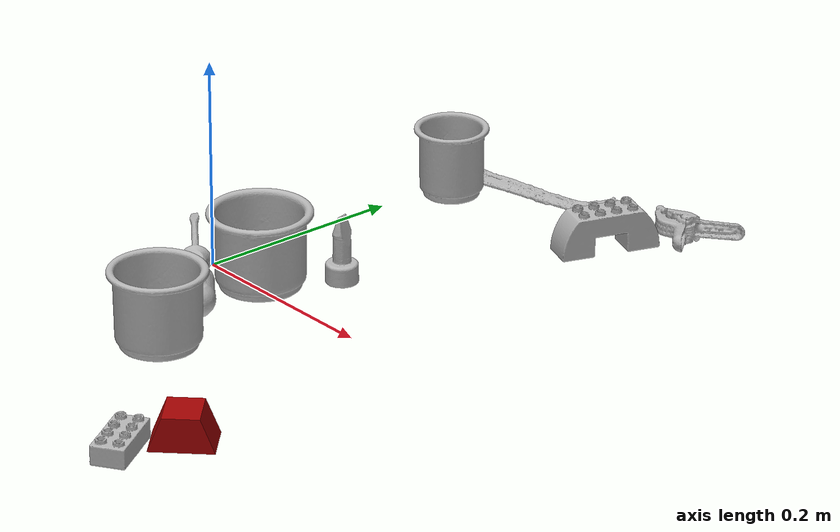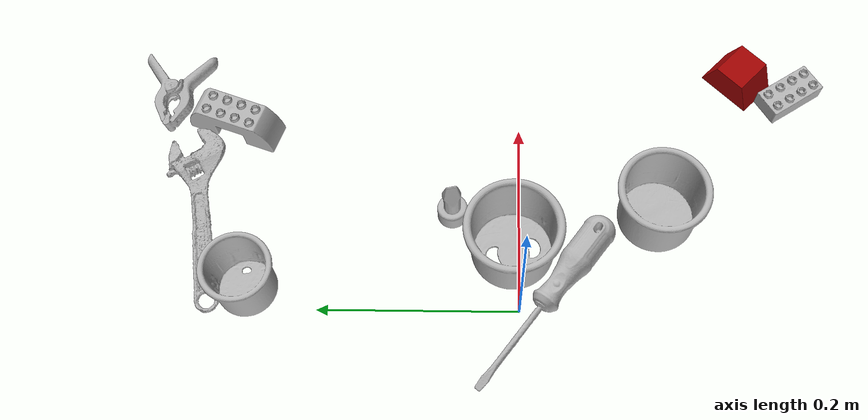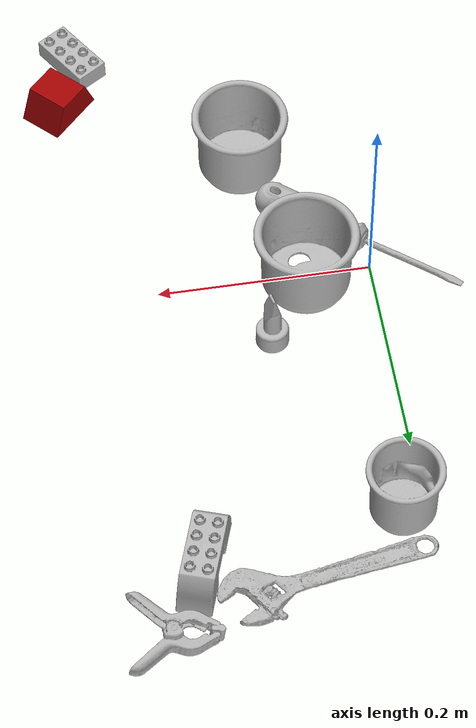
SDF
<sdf version="1.4">
  <world name="default">
    <light name="light1" type="point">
      <pose>0 0 1 0 0 0</pose>
      <diffuse>3 3 3 1</diffuse>
      <specular>3 3 3 1</specular>
    </light>
    <light name="light2" type="point">
      <pose>0 0.5 2 0 0 0</pose>
      <diffuse>1 1 1 1</diffuse>
      <specular>1 1 1 1</specular>
    </light>
    <light name="light3" type="point">
      <pose>0 0.5 2 0 0 0</pose>
      <diffuse>3 3 3 1</diffuse>
      <specular>3 3 3 1</specular>
    </light>
    <scene>
      <ambient>0.7 0.7 0.7</ambient>
    </scene>
    <model name="cup1">
      <link name="link_cup1">
        <collision name="default">
          <geometry>
            <mesh>
              <uri>model://d_cups/collision_meshes/collision.obj</uri>
              <scale>1.0 1.0 1.0</scale>
            </mesh>
          </geometry>
          <surface>
            <friction>
              <ode>
                <mu>0.5</mu>
                <mu2>0.5</mu2>
              </ode>
            </friction>
          <contact>
        <ode>
            <max_vel>0</max_vel>
            <min_depth>0.0001</min_depth>
            <kp>1e8</kp>
        </ode>
    </contact></surface>
        </collision>
        <visual name="default">
          <geometry>
            <mesh>
              <uri>model://d_cups/visual_meshes/visual.dae</uri>
              <scale>1.0 1.0 1.0</scale>
            </mesh>
          </geometry>
        </visual>
        <inertial>
          <mass>0.06783133745193481</mass>
          <pose>0.0008068059105426073 0.0019117397023364902 -0.002266651252284646 0.24012426461604838 -0.24709695541432683 0.5942481546461544</pose>
          <inertia>
            <ixx>5.679078e-05</ixx>
            <iyy>5.662642e-05</iyy>
            <izz>5.1405317e-05</izz>
            <ixy>0</ixy>
            <ixz>0</ixz>
            <iyz>0</iyz>
          </inertia>
        </inertial>
      </link>
      <pose>0.01993335410952568 0.2682332992553711 0.034658998250961304 3.576624809612431e-07 1.0836786260924463e-07 2.712858792687086</pose>
    </model>
    <model name="cup2">
      <link name="link_cup2">
        <collision name="default">
          <geometry>
            <mesh>
              <uri>model://h_cups/collision_meshes/collision.obj</uri>
              <scale>1.0 1.0 1.0</scale>
            </mesh>
          </geometry>
          <surface>
            <friction>
              <ode>
                <mu>0.5</mu>
                <mu2>0.5</mu2>
              </ode>
            </friction>
          <contact>
        <ode>
            <max_vel>0</max_vel>
            <min_depth>0.0001</min_depth>
            <kp>1e8</kp>
        </ode>
    </contact></surface>
        </collision>
        <visual name="default">
          <geometry>
            <mesh>
              <uri>model://h_cups/visual_meshes/visual.dae</uri>
              <scale>1.0 1.0 1.0</scale>
            </mesh>
          </geometry>
        </visual>
        <inertial>
          <mass>0.0420527309179306</mass>
          <pose>-2.702834171941504e-05 0.0002301869390066713 -0.0018405404407531023 -0.02436231807299455 0.06545237013505961 0.1288477560592675</pose>
          <inertia>
            <ixx>5.430915e-05</ixx>
            <iyy>5.3661057e-05</iyy>
            <izz>5.69554e-05</izz>
            <ixy>0</ixy>
            <ixz>0</ixz>
            <iyz>0</iyz>
          </inertia>
        </inertial>
      </link>
      <pose>0.10104040801525116 -0.13869881629943848 0.0377579890191555 -5.45395743152353e-08 -2.5278162012767462e-08 -0.6077792019377949</pose>
    </model>
    <model name="cup3">
      <link name="link_cup3">
        <collision name="default">
          <geometry>
            <mesh>
              <uri>model://i_cups/collision_meshes/collision.obj</uri>
              <scale>1.0 1.0 1.0</scale>
            </mesh>
          </geometry>
          <surface>
            <friction>
              <ode>
                <mu>0.5</mu>
                <mu2>0.5</mu2>
              </ode>
            </friction>
          <contact>
        <ode>
            <max_vel>0</max_vel>
            <min_depth>0.0001</min_depth>
            <kp>1e8</kp>
        </ode>
    </contact></surface>
        </collision>
        <visual name="default">
          <geometry>
            <mesh>
              <uri>model://i_cups/visual_meshes/visual.dae</uri>
              <scale>1.0 1.0 1.0</scale>
            </mesh>
          </geometry>
        </visual>
        <inertial>
          <mass>0.1172947883605957</mass>
          <pose>0.00011240218736929819 0.00016797319403849542 -0.0008579035638831556 -0.028982974239284674 -0.039873277979934216 -0.3459139003356122</pose>
          <inertia>
            <ixx>0.00016239638</ixx>
            <iyy>0.00016382721</iyy>
            <izz>0.00018150422</izz>
            <ixy>0</ixy>
            <ixz>0</ixz>
            <iyz>0</iyz>
          </inertia>
        </inertial>
      </link>
      <pose>0.06204502284526825 0.006778839509934187 0.037774838507175446 0.0019463219519578396 -0.0063459277875223515 1.51141871159517</pose>
    </model>
    <model name="toy1">
      <link name="link_toy1">
        <collision name="default">
          <geometry>
            <mesh>
              <uri>model://prism/collision_meshes/collision.obj</uri>
              <scale>0.5 0.5 0.5</scale>
            </mesh>
          </geometry>
          <surface>
            <friction>
              <ode>
                <mu>0.5</mu>
                <mu2>0.5</mu2>
              </ode>
            </friction>
          <contact>
        <ode>
            <max_vel>0</max_vel>
            <min_depth>0.0001</min_depth>
            <kp>1e8</kp>
        </ode>
    </contact></surface>
        </collision>
        <visual name="default">
          <geometry>
            <mesh>
              <uri>model://prism/visual_meshes/visual.dae</uri>
              <scale>0.5 0.5 0.5</scale>
            </mesh>
          </geometry>
        </visual>
        <inertial>
          <mass>0.04854338616132736</mass>
          <pose>-4.92679828312248e-05 -2.480786349678965e-07 -0.0016934549203142524 0.0 0.006559181697473799 0.0</pose>
          <inertia>
            <ixx>1.0952453e-05</ixx>
            <iyy>1.3236178e-05</iyy>
            <izz>1.6212734e-05</izz>
            <ixy>0</ixy>
            <ixz>0</ixz>
            <iyz>0</iyz>
          </inertia>
        </inertial>
      </link>
      <pose>0.2639577090740204 -0.2360869199037552 0.016085000708699226 -1.6669209956798927e-08 -7.228494896222415e-08 0.7939013828458701</pose>
    </model>
    <model name="toy2">
      <link name="link_toy2">
        <collision name="default">
          <geometry>
            <mesh>
              <uri>model://e_toy_airplane/collision_meshes/collision.obj</uri>
              <scale>1.0 1.0 1.0</scale>
            </mesh>
          </geometry>
          <surface>
            <friction>
              <ode>
                <mu>0.5</mu>
                <mu2>0.5</mu2>
              </ode>
            </friction>
          <contact>
        <ode>
            <max_vel>0</max_vel>
            <min_depth>0.0001</min_depth>
            <kp>1e8</kp>
        </ode>
    </contact></surface>
        </collision>
        <visual name="default">
          <geometry>
            <mesh>
              <uri>model://e_toy_airplane/visual_meshes/visual.dae</uri>
              <scale>1.0 1.0 1.0</scale>
            </mesh>
          </geometry>
        </visual>
        <inertial>
          <mass>0.014407381415367126</mass>
          <pose>0.00011740459740394726 -2.2482932763523422e-05 -0.011187206022441387 0.005518488041491648 0.009228285270614433 0.15041380385765837</pose>
          <inertia>
            <ixx>4.397297e-06</ixx>
            <iyy>4.352315e-06</iyy>
            <izz>1.3215607e-06</izz>
            <ixy>0</ixy>
            <ixz>0</ixz>
            <iyz>0</iyz>
          </inertia>
        </inertial>
      </link>
      <pose>0.1036388948559761 0.06765614449977875 0.03321214020252228 4.4674739336693267e-05 -0.00017976185157774925 0.09284649253270646</pose>
    </model>
    <model name="toy3">
      <link name="link_toy3">
        <collision name="default">
          <geometry>
            <mesh>
              <uri>model://e_lego_duplo/collision_meshes/collision.obj</uri>
              <scale>1.0 1.0 1.0</scale>
            </mesh>
          </geometry>
          <surface>
            <friction>
              <ode>
                <mu>0.5</mu>
                <mu2>0.5</mu2>
              </ode>
            </friction>
          <contact>
        <ode>
            <max_vel>0</max_vel>
            <min_depth>0.0001</min_depth>
            <kp>1e8</kp>
        </ode>
    </contact></surface>
        </collision>
        <visual name="default">
          <geometry>
            <mesh>
              <uri>model://e_lego_duplo/visual_meshes/visual.dae</uri>
              <scale>1.0 1.0 1.0</scale>
            </mesh>
          </geometry>
        </visual>
        <inertial>
          <mass>0.059077512472867966</mass>
          <pose>0.00032560460385866463 0.0002348544221604243 0.0019521447829902172 -0.0225678114641467 -6.824730634042773e-05 -0.007625154901652298</pose>
          <inertia>
            <ixx>1.2319611e-05</ixx>
            <iyy>5.0562856e-05</iyy>
            <izz>4.923807e-05</izz>
            <ixy>0</ixy>
            <ixz>0</ixz>
            <iyz>0</iyz>
          </inertia>
        </inertial>
      </link>
      <pose>0.20324024558067322 0.29819390177726746 0.02180899679660797 -3.7753427058009623e-07 -1.8825729017588426e-07 1.2387576161524052</pose>
    </model>
    <model name="toy4">
      <link name="link_toy4">
        <collision name="default">
          <geometry>
            <mesh>
              <uri>model://c_lego_duplo/collision_meshes/collision.obj</uri>
              <scale>1.0 1.0 1.0</scale>
            </mesh>
          </geometry>
          <surface>
            <friction>
              <ode>
                <mu>0.5</mu>
                <mu2>0.5</mu2>
              </ode>
            </friction>
          <contact>
        <ode>
            <max_vel>0</max_vel>
            <min_depth>0.0001</min_depth>
            <kp>1e8</kp>
        </ode>
    </contact></surface>
        </collision>
        <visual name="default">
          <geometry>
            <mesh>
              <uri>model://c_lego_duplo/visual_meshes/visual.dae</uri>
              <scale>1.0 1.0 1.0</scale>
            </mesh>
          </geometry>
        </visual>
        <inertial>
          <mass>0.019630447030067444</mass>
          <pose>0.000316459103487432 0.00019464583601802588 0.0010453149443492293 -0.011520787241280632 0.0059000791517924015 0.031100331826339908</pose>
          <inertia>
            <ixx>7.554163e-06</ixx>
            <iyy>2.4130718e-06</iyy>
            <izz>8.827816e-06</izz>
            <ixy>0</ixy>
            <ixz>0</ixz>
            <iyz>0</iyz>
          </inertia>
        </inertial>
      </link>
      <pose>0.24374094605445862 -0.2890169322490692 0.011981489136815071 0.008019290855416127 -0.0020916406465443346 0.5457242546595982</pose>
    </model>
    <model name="hardware1">
      <link name="link_hardware1">
        <collision name="default">
          <geometry>
            <mesh>
              <uri>model://flat_screwdriver/collision_meshes/collision.obj</uri>
              <scale>1.0 1.0 1.0</scale>
            </mesh>
          </geometry>
          <surface>
            <friction>
              <ode>
                <mu>0.5</mu>
                <mu2>0.5</mu2>
              </ode>
            </friction>
          <contact>
        <ode>
            <max_vel>0</max_vel>
            <min_depth>0.0001</min_depth>
            <kp>1e8</kp>
        </ode>
    </contact></surface>
        </collision>
        <visual name="default">
          <geometry>
            <mesh>
              <uri>model://flat_screwdriver/visual_meshes/visual.dae</uri>
              <scale>1.0 1.0 1.0</scale>
            </mesh>
          </geometry>
        </visual>
        <inertial>
          <mass>0.05795019492506981</mass>
          <pose>-0.0489187128841877 -0.0006576800369657576 -0.0006140916375443339 -0.5616548332173045 -0.0032337243504420286 0.0069822829580931615</pose>
          <inertia>
            <ixx>6.846775e-06</ixx>
            <iyy>8.6921296e-05</iyy>
            <izz>8.688106e-05</izz>
            <ixy>0</ixy>
            <ixz>0</ixz>
            <iyz>0</iyz>
          </inertia>
        </inertial>
      </link>
      <pose>0.006991691887378693 -0.025643818080425262 0.0153386564925313 -0.21441191858247316 0.040694487064047165 2.4900919659970424</pose>
    </model>
    <model name="hardware2">
      <link name="link_hardware2">
        <collision name="default">
          <geometry>
            <mesh>
              <uri>model://medium_clamp/collision_meshes/collision.obj</uri>
              <scale>1.0 1.0 1.0</scale>
            </mesh>
          </geometry>
          <surface>
            <friction>
              <ode>
                <mu>0.5</mu>
                <mu2>0.5</mu2>
              </ode>
            </friction>
          <contact>
        <ode>
            <max_vel>0</max_vel>
            <min_depth>0.0001</min_depth>
            <kp>1e8</kp>
        </ode>
    </contact></surface>
        </collision>
        <visual name="default">
          <geometry>
            <mesh>
              <uri>model://medium_clamp/visual_meshes/visual.dae</uri>
              <scale>1.0 1.0 1.0</scale>
            </mesh>
          </geometry>
        </visual>
        <inertial>
          <mass>0.028340468183159828</mass>
          <pose>0.0053909942507743835 0.0003953247796744108 -0.0001222157443407923 -0.001226920261124021 0.0025845025680982987 0.03820769890719856</pose>
          <inertia>
            <ixx>7.720961e-06</ixx>
            <iyy>1.1236185e-05</iyy>
            <izz>1.7307093e-05</izz>
            <ixy>0</ixy>
            <ixz>0</ixz>
            <iyz>0</iyz>
          </inertia>
        </inertial>
      </link>
      <pose>0.2411724478006363 0.3663022518157959 0.013533584773540497 0.07742649139950007 0.08544985829020077 3.043773365221356</pose>
    </model>
    <model name="hardware3">
      <link name="link_hardware3">
        <collision name="default">
          <geometry>
            <mesh>
              <uri>model://adjustable_wrench/collision_meshes/collision.obj</uri>
              <scale>1.0 1.0 1.0</scale>
            </mesh>
          </geometry>
          <surface>
            <friction>
              <ode>
                <mu>0.5</mu>
                <mu2>0.5</mu2>
              </ode>
            </friction>
          <contact>
        <ode>
            <max_vel>0</max_vel>
            <min_depth>0.0001</min_depth>
            <kp>1e8</kp>
        </ode>
    </contact></surface>
        </collision>
        <visual name="default">
          <geometry>
            <mesh>
              <uri>model://adjustable_wrench/visual_meshes/visual.dae</uri>
              <scale>1.0 1.0 1.0</scale>
            </mesh>
          </geometry>
        </visual>
        <inertial>
          <mass>0.023935195058584213</mass>
          <pose>0.03740980476140976 -0.0028968877159059048 -0.001114922808483243 -0.014473210185193002 0.006656019736435525 -0.010954188403863873</pose>
          <inertia>
            <ixx>4.898683e-06</ixx>
            <iyy>5.733333e-05</iyy>
            <izz>6.197185e-05</izz>
            <ixy>0</ixy>
            <ixz>0</ixz>
            <iyz>0</iyz>
          </inertia>
        </inertial>
      </link>
      <pose>0.0989503562450409 0.3278053402900696 0.006125044543296099 0.04676004054412024 -0.029270497449587467 0.162807675451303</pose>
    </model>
  <physics type="ode">
      <max_contacts>50</max_contacts>
      <ode>
        <solver>
          <type>quick</type>
          <iters>75</iters>
        </solver>
        <constraints>
          <contact_max_correcting_vel>0</contact_max_correcting_vel>
          <contact_surface_layer>0</contact_surface_layer>
        </constraints>
      </ode>
    </physics></world>
</sdf>
